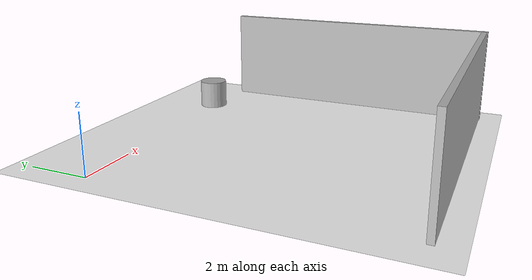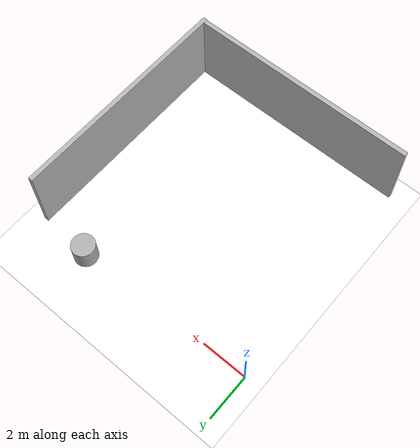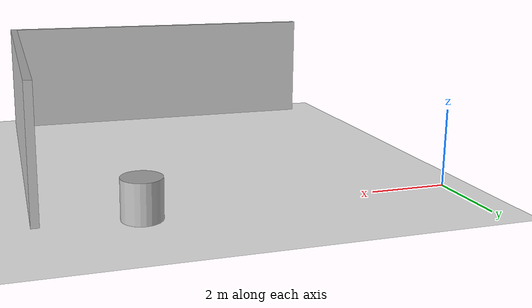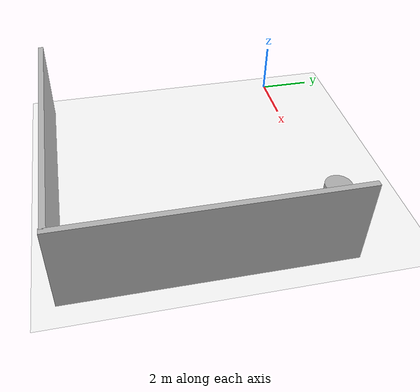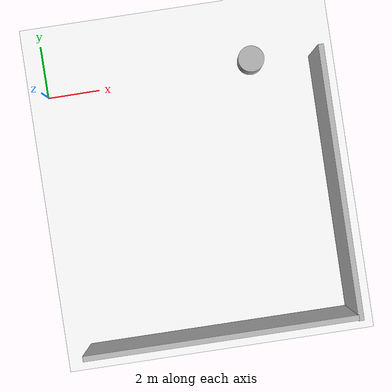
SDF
<sdf version="1.10">
 <world name="empty">
  <model name="ground_plane">
   <static>true</static>
   <link name="link">
    <collision name="collision">
     <geometry><plane><normal>0 0 1</normal><size>100 100</size></plane></geometry>
    </collision>
    <visual name="visual">
     <geometry><plane><normal>0 0 1</normal><size>20 20</size></plane></geometry>
     <material>
      <ambient>1 1 1 1</ambient>
      <diffuse>1 1 1 1</diffuse>
      <pbr>
       <metal>
        <albedo_map>file:///home/kiranchand/Downloads/project_2026/grass.jpg</albedo_map>
        <roughness>0.9</roughness>
        <metalness>0.0</metalness>
       </metal>
      </pbr>
     </material>
    </visual>
    <inertial>
     <mass>1</mass>
     <inertia><ixx>1</ixx><ixy>0</ixy><ixz>0</ixz><iyy>1</iyy><iyz>0</iyz><izz>1</izz></inertia>
    </inertial>
   </link>
  </model>
  <model name="cutout_wall_1">
   <static>true</static>
   <link name="link">
    <pose>0 0 1.3999999999999999 0 0 0</pose>
    <collision name="collision">
     <geometry><box><size>10 0.20000000000000001 3.7999999999999998</size></box></geometry>
     <surface>
      <contact>
       <collide_without_contact>true</collide_without_contact>
       <collide_without_contact_bitmask>2</collide_without_contact_bitmask>
      </contact>
     </surface>
    </collision>
    <visual name="visual">
     <cast_shadows>false</cast_shadows>
     <geometry><box><size>10 0.20000000000000001 3.7999999999999998</size></box></geometry>
     <material>
      <script>
       <uri>https://fuel.gazebosim.org/1.0/openrobotics/models/cutout wall/2/files/materials/scripts</uri>
       <uri>https://fuel.gazebosim.org/1.0/openrobotics/models/cutout wall/2/files/materials/textures</uri>
       <name>drc_practice/cutout_wall</name>
      </script>
     </material>
    </visual>
    <sensor name="mud_contact" type="contact">
     <always_on>true</always_on>
     <update_rate>1000</update_rate>
     <contact><collision>collision</collision><topic>__default_topic__</topic></contact>
    </sensor>
    <inertial>
     <mass>1</mass>
     <inertia><ixx>1</ixx><ixy>0</ixy><ixz>0</ixz><iyy>1</iyy><iyz>0</iyz><izz>1</izz></inertia>
    </inertial>
   </link>
   <plugin name="gazebo_mud" filename="libMudPlugin.so">
    <contact_sensor_name>link/mud_contact</contact_sensor_name>
    <stiffness>0.0</stiffness>
    <damping>40.0</damping>
    <contact_surface_bitmask>2</contact_surface_bitmask>
    <link_name>drill::link</link_name>
   </plugin>
   <pose>5.2112197875976562 -9.7711372375488281 0 0 0 0</pose>
  </model>
  <model name="cutout_wall_4">
   <static>true</static>
   <link name="link">
    <pose>0 0 1.3999999999999999 0 0 0</pose>
    <collision name="collision">
     <geometry><box><size>10 0.20000000000000001 3.7999999999999998</size></box></geometry>
     <surface>
      <contact>
       <collide_without_contact>true</collide_without_contact>
       <collide_without_contact_bitmask>2</collide_without_contact_bitmask>
      </contact>
     </surface>
    </collision>
    <visual name="visual">
     <cast_shadows>false</cast_shadows>
     <geometry><box><size>10 0.20000000000000001 3.7999999999999998</size></box></geometry>
     <material>
      <script>
       <uri>https://fuel.gazebosim.org/1.0/openrobotics/models/cutout wall/2/files/materials/scripts</uri>
       <uri>https://fuel.gazebosim.org/1.0/openrobotics/models/cutout wall/2/files/materials/textures</uri>
       <name>drc_practice/cutout_wall</name>
      </script>
     </material>
    </visual>
    <sensor name="mud_contact" type="contact">
     <always_on>true</always_on>
     <update_rate>1000</update_rate>
     <contact><collision>collision</collision><topic>__default_topic__</topic></contact>
    </sensor>
    <inertial>
     <mass>1</mass>
     <inertia><ixx>1</ixx><ixy>0</ixy><ixz>0</ixz><iyy>1</iyy><iyz>0</iyz><izz>1</izz></inertia>
    </inertial>
   </link>
   <plugin name="gazebo_mud" filename="libMudPlugin.so">
    <contact_sensor_name>link/mud_contact</contact_sensor_name>
    <stiffness>0.0</stiffness>
    <damping>40.0</damping>
    <contact_surface_bitmask>2</contact_surface_bitmask>
    <link_name>drill::link</link_name>
   </plugin>
   <pose>10.294502258300781 -4.8952364921569824 4.4408920985006262e-16 0 0 1.5676399480184968</pose>
  </model>
  <model name="cylinder_0">
   <pose>7.9348020425405394 0.2219017163436563 0.49999943207967634 2.7120257298276201e-19 -3.3597530694858341e-20 3.7424880247309598e-20</pose>
   <link name="cylinder_link">
    <inertial>
     <inertia>
      <ixx>0.14580000000000001</ixx>
      <ixy>0</ixy>
      <ixz>0</ixz>
      <iyy>0.14580000000000001</iyy>
      <iyz>0</iyz>
      <izz>0.125</izz>
     </inertia>
     <mass>1</mass>
    </inertial>
    <collision name="cylinder_collision">
     <geometry><cylinder><radius>0.5</radius><length>1</length></cylinder></geometry>
    </collision>
    <visual name="cylinder_visual">
     <geometry><cylinder><radius>0.5</radius><length>1</length></cylinder></geometry>
     <material>
      <ambient>0.300000012 0.300000012 0.300000012 1</ambient>
      <diffuse>0.699999988 0.699999988 0.699999988 1</diffuse>
      <specular>1 1 1 1</specular>
     </material>
    </visual>
   </link>
   <static>false</static>
  </model>
 </world>
</sdf>
